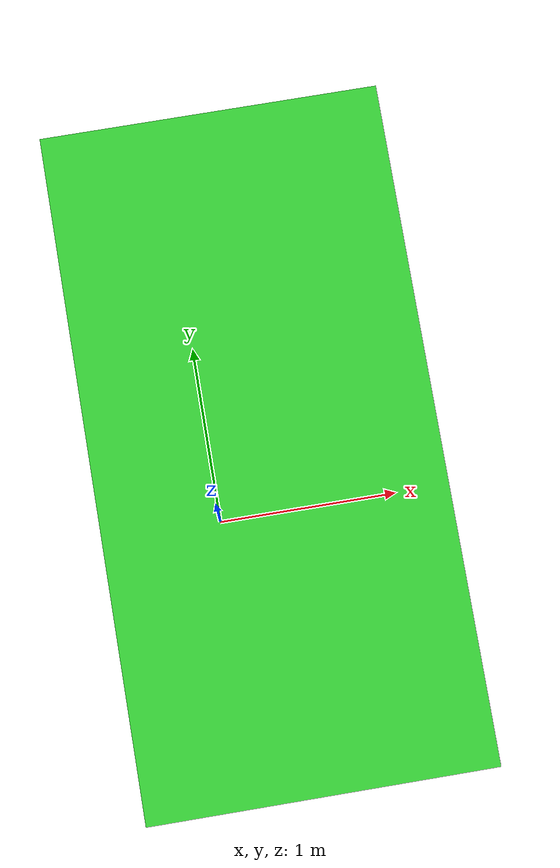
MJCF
<mujoco model="side_incline_test">
    <option gravity="0 0 -9.81"/>

    <worldbody>

        <body name="incline" pos="0.315 0.4 -0.1">

            <geom name="ramp" type="box" size="1 2 .02"
                  pos="0 0 0.02"
                  rgba="0.2 0.8 0.2 1"
                  euler="0.0 0.3 0"/>
        </body>

    </worldbody>
</mujoco>
